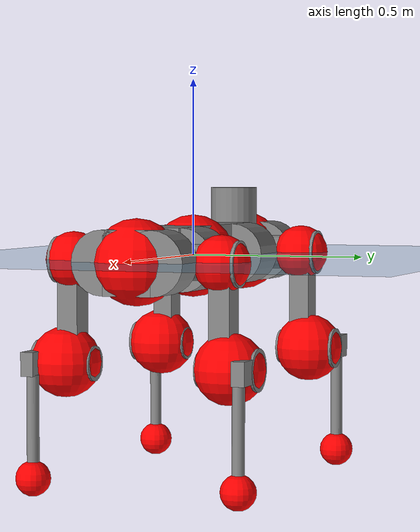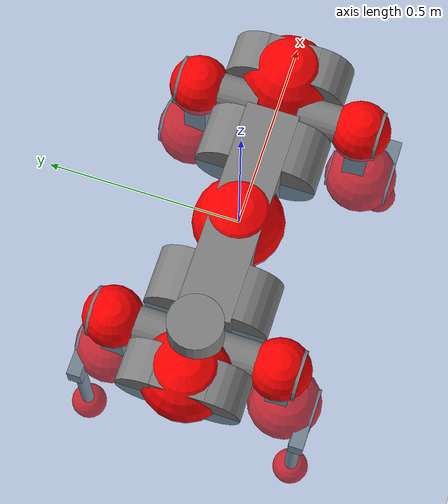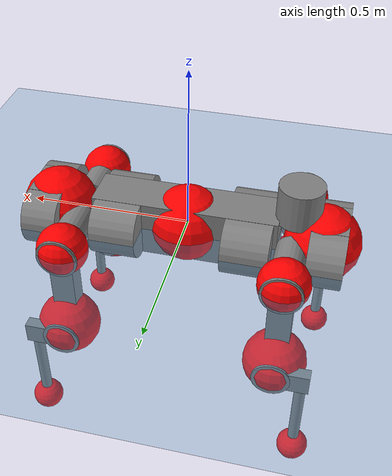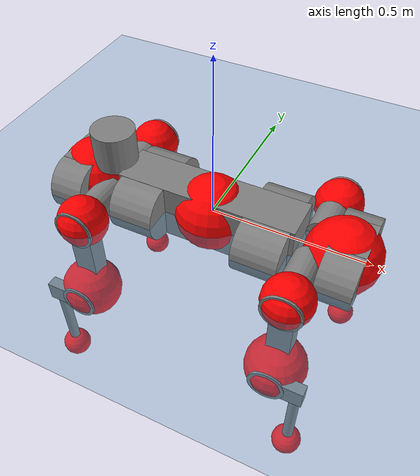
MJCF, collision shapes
<mujoco model="anymal_c">
  <compiler angle="radian" assetdir="assets" balanceinertia="true" inertiafromgeom="false"/>

  <option timestep="0.005" density="1.2" viscosity="2e-05"/>

  <size nkey="1"/>

  <visual>
    <quality shadowsize="8192"/>
    <map shadowclip="0.5"/>
  </visual>

  <default>
    <default class="/">
      <material specular="0" shininess="0.25"/>
      <geom contype="0" conaffinity="0" group="1" solref="-1000 -80"/>
      <site size="0.01 0.005 0.005" group="5"/>
      <general forcelimited="true" forcerange="-80 80" biastype="affine" gainprm="80" biasprm="0 -80 -2"/>
      <default class="anymal_c">
        <joint armature="0.01" damping="0.01" frictionloss="0.1"/>
        <default class="visual">
          <geom type="mesh" group="2"/>
          <default class="visual_zflip"/>
        </default>
        <default class="collision">
          <geom type="cylinder" group="3"/>
          <default class="foot">
            <geom size="0.03 0 0" type="sphere" condim="6" priority="1" friction="0.8 0.02 0.01" solimp="0.015 1 0.03"/>
          </default>
        </default>
      </default>
      <default class="reward_collision_sphere">
        <geom group="5" rgba="1 0 0 1"/>
      </default>
    </default>
  </default>

  <asset>
    <texture type="skybox" colorspace="auto" name="//unnamed_texture_0" builtin="gradient" rgb1="0.95 0.95 0.95" rgb2="0.95 0.95 0.95" width="100" height="600"/>
    <texture type="2d" colorspace="auto" name="texplane" builtin="checker" rgb1="0.345 0.575 0.748" rgb2="0.345 0.575 0.748" markrgb="1 1 1" width="512" height="512"/>
    <texture type="2d" colorspace="linear" name="base" file="base.png"/>
    <texture type="2d" colorspace="linear" name="top_shell" file="top_shell.png"/>
    <texture type="2d" colorspace="linear" name="bottom_shell" file="bottom_shell.png"/>
    <texture type="2d" colorspace="linear" name="remote" file="remote.png"/>
    <texture type="2d" colorspace="linear" name="hatch" file="hatch.png"/>
    <texture type="2d" colorspace="linear" name="handle" file="handle.png"/>
    <texture type="2d" colorspace="linear" name="face" file="face.png"/>
    <texture type="2d" colorspace="linear" name="battery" file="battery.png"/>
    <texture type="2d" colorspace="linear" name="lidar_cage" file="lidar_cage.png"/>
    <texture type="2d" colorspace="linear" name="depth_camera" file="depth_camera.png"/>
    <texture type="2d" colorspace="linear" name="wide_angle_camera" file="wide_angle_camera.png"/>
    <texture type="2d" colorspace="linear" name="lidar" file="lidar.png"/>
    <texture type="2d" colorspace="linear" name="drive" file="drive.png"/>
    <texture type="2d" colorspace="linear" name="hip_l" file="hip_l.png"/>
    <texture type="2d" colorspace="linear" name="shank_l" file="shank_l.png"/>
    <texture type="2d" colorspace="linear" name="foot" file="foot.png"/>
    <texture type="2d" colorspace="linear" name="thigh" file="thigh.png"/>
    <texture type="2d" colorspace="linear" name="shank_r" file="shank_r.png"/>
    <texture type="2d" colorspace="linear" name="hip_r" file="hip_r.png"/>
    <material name="MatPlane" class="/" texture="texplane" texuniform="true" texrepeat="2 2" specular="0.9" shininess="0.5"/>
    <material name="black_plastic" class="/" rgba="0.007 0.007 0.007 1"/>
    <material name="green" class="/" rgba="0.052 0.178 0.033 1"/>
    <material name="red" class="/" rgba="0.178 0.006 0.005 1"/>
    <material name="yellow" class="/" rgba="0.178 0.119 0.006 1"/>
    <material name="lwl" class="/" rgba="0.8 0.8 0.8 1"/>
    <material name="base" class="/" texture="base"/>
    <material name="top_shell" class="/" texture="top_shell"/>
    <material name="bottom_shell" class="/" texture="bottom_shell"/>
    <material name="hip_l" class="/" texture="hip_l"/>
    <material name="thigh" class="/" texture="thigh"/>
    <material name="shank_l" class="/" texture="shank_l"/>
    <material name="foot" class="/" texture="foot"/>
    <material name="hip_r" class="/" texture="hip_r"/>
    <material name="shank" class="/" texture="shank_r"/>
    <material name="hatch" class="/" texture="hatch"/>
    <material name="remote" class="/" texture="remote"/>
    <material name="handle" class="/" texture="handle"/>
    <material name="face" class="/" texture="face"/>
    <material name="depth_camera" class="/" texture="depth_camera"/>
    <material name="wide_angle_camera" class="/" texture="wide_angle_camera"/>
    <material name="battery" class="/" texture="battery"/>
    <material name="lidar_cage" class="/" texture="lidar_cage"/>
    <material name="lidar" class="/" texture="lidar"/>
    <material name="drive" class="/" texture="drive"/>
    <mesh name="base_0" class="/" file="base_0.obj"/>
    <mesh name="base_1" class="/" file="base_1.obj"/>
    <mesh name="base_2" class="/" file="base_2.obj"/>
    <mesh name="base_3" class="/" file="base_3.obj"/>
    <mesh name="base_4" class="/" file="base_4.obj"/>
    <mesh name="base_5" class="/" file="base_5.obj"/>
    <mesh name="top_shell" class="/" file="top_shell.obj"/>
    <mesh name="bottom_shell" class="/" file="bottom_shell.obj"/>
    <mesh name="remote" class="/" file="remote.obj"/>
    <mesh name="handle" class="/" file="handle.obj"/>
    <mesh name="face" class="/" file="face.obj"/>
    <mesh name="wide_angle_camera" class="/" file="wide_angle_camera.obj"/>
    <mesh name="depth_camera" class="/" file="depth_camera.obj"/>
    <mesh name="battery" class="/" file="battery.obj"/>
    <mesh name="lidar_cage" class="/" file="lidar_cage.obj"/>
    <mesh name="lidar" class="/" file="lidar.obj"/>
    <mesh name="drive" class="/" file="drive.obj"/>
    <mesh name="hip_l" class="/" file="hip_l.obj"/>
    <mesh name="thigh" class="/" file="thigh.obj"/>
    <mesh name="shank_l" class="/" file="shank_l.obj"/>
    <mesh name="foot" class="/" file="foot.obj"/>
    <mesh name="hip_r" class="/" file="hip_r.obj"/>
    <mesh name="hatch" class="/" file="hatch.obj"/>
    <mesh name="shank_r" class="/" file="shank_r.obj"/>
  </asset>

  <worldbody>
    <geom name="floor" class="/" size="100 100 0.125" type="plane" group="0" material="MatPlane"/>
    <light name="toplight_shadow" class="/" pos="0 0 5" dir="0.0990148 0.0990148 -0.990148" type="directional" ambient="0.04 0.04 0.04" diffuse="0.55 0.55 0.55" specular="0.12 0.12 0.12"/>
    <light name="toplight_fill" class="/" pos="0 0 5" dir="0.0990148 0.0990148 -0.990148" type="directional" castshadow="false" ambient="0.04 0.04 0.04" diffuse="0.3 0.3 0.3" specular="0.08 0.08 0.08"/>
    <body name="trunk" childclass="anymal_c" pos="-0.000119638 1.02386e-05 -0.00264251" quat="1 -0.000225826 0.000291407 -0.000100596">
      <inertial pos="0.00112695 0.00101834 0.0516037" quat="0.499551 0.500481 0.499959 0.500008" mass="17.3342" diaginertia="0.415152 0.66458 0.207875"/>
      <joint name="//unnamed_joint_0" type="free" armature="0" damping="0" frictionloss="0"/>
      <geom name="//unnamed_geom_1" class="visual" material="green" mesh="base_0"/>
      <geom name="//unnamed_geom_2" class="visual" material="yellow" mesh="base_1"/>
      <geom name="//unnamed_geom_3" class="visual" material="red" mesh="base_2"/>
      <geom name="//unnamed_geom_4" class="visual" material="black_plastic" mesh="base_3"/>
      <geom name="//unnamed_geom_5" class="visual" material="lwl" mesh="base_4"/>
      <geom name="//unnamed_geom_6" class="visual" material="base" mesh="base_5"/>
      <geom name="trunk_1" class="collision" size="0.284081 0.0685712 0.0881629" type="box"/>
      <geom name="trunk_2" class="collision" size="0.0881629 0.0710201" pos="0.200057 0.071595 0" quat="0.707107 0 0.707107 0"/>
      <geom name="trunk_3" class="collision" size="0.0881629 0.0710201" pos="-0.200057 0.071595 0" quat="0.707107 0 0.707107 0"/>
      <geom name="trunk_4" class="collision" size="0.0881629 0.0710201" pos="0.200057 -0.071595 0" quat="0.707107 0 0.707107 0"/>
      <geom name="trunk_5" class="collision" size="0.0881629 0.0710201" pos="-0.200057 -0.071595 0" quat="0.707107 0 0.707107 0"/>
      <geom name="//unnamed_geom_12" class="visual" material="top_shell" mesh="top_shell"/>
      <geom name="//unnamed_geom_13" class="visual" material="bottom_shell" mesh="bottom_shell"/>
      <geom name="//unnamed_geom_14" class="visual" material="remote" mesh="remote"/>
      <geom name="//unnamed_geom_15" class="visual" material="handle" mesh="handle"/>
      <geom name="//unnamed_geom_16" class="visual" pos="0.381258 0 0" quat="1 0 0 0" material="face" mesh="face"/>
      <geom name="trunk_6" class="collision" size="0.0538773 0.0685712 0.0881629" pos="0.431848 0 0" type="box"/>
      <geom name="//unnamed_geom_18" class="collision" size="0.0881629 0.0538773" pos="0.431848 0.071595 0" quat="0.707107 0 0.707107 0"/>
      <geom name="//unnamed_geom_19" class="collision" size="0.0881629 0.0538773" pos="0.431848 -0.071595 0" quat="0.707107 0 0.707107 0"/>
      <geom name="//unnamed_geom_20" class="visual" pos="0.42463 0 -0.0296687" quat="0.965926 0 0.258819 0" material="depth_camera" mesh="depth_camera"/>
      <geom name="//unnamed_geom_21" class="visual" pos="0.471859 0 0.0149127" material="wide_angle_camera" mesh="wide_angle_camera"/>
      <geom name="//unnamed_geom_22" class="visual_zflip" pos="-0.381258 0 0" quat="0 0 0 1" material="face" mesh="face"/>
      <geom name="trunk_7" class="collision" size="0.0538773 0.0685712 0.0881629" pos="-0.431848 0 0" quat="0 0 0 1" type="box"/>
      <geom name="//unnamed_geom_24" class="collision" size="0.0881629 0.0538773" pos="-0.431848 -0.071595 0" quat="0 -0.707107 0 0.707107"/>
      <geom name="//unnamed_geom_25" class="collision" size="0.0881629 0.0538773" pos="-0.431848 0.071595 0" quat="0 -0.707107 0 0.707107"/>
      <geom name="//unnamed_geom_26" class="visual" pos="-0.42463 0 -0.0296687" quat="0 -0.258819 0 0.965926" material="depth_camera" mesh="depth_camera"/>
      <geom name="//unnamed_geom_27" class="visual_zflip" pos="-0.471859 0 0.0149127" quat="0 0 0 1" material="wide_angle_camera" mesh="wide_angle_camera"/>
      <geom name="//unnamed_geom_28" class="visual" material="battery" mesh="battery"/>
      <geom name="//unnamed_geom_29" class="visual" pos="0 0.0795567 0.0283585" quat="0.683013 -0.183013 0.183013 0.683013" material="depth_camera" mesh="depth_camera"/>
      <geom name="//unnamed_geom_30" class="visual" pos="0 -0.0795567 0.0283585" quat="0.683013 0.183013 0.183013 -0.683013" material="depth_camera" mesh="depth_camera"/>
      <geom name="//unnamed_geom_31" class="visual" pos="-0.334808 0 0.0732189" quat="1 0 0 0" material="lidar_cage" mesh="lidar_cage"/>
      <geom name="trunk_8" class="collision" size="0.0685712 0.0587753" pos="-0.334808 0 0.132989"/>
      <geom name="//unnamed_geom_33" class="visual" pos="-0.334808 4.04589e-05 0.141656" quat="0.707107 0 0 -0.707107" material="lidar" mesh="lidar"/>
      <geom name="//unnamed_geom_34" class="visual" pos="0.275849 0.10636 4.59024e-10" quat="0.258819 0.965926 0 0" material="drive" mesh="drive"/>
      <geom name="//unnamed_geom_35" class="visual" pos="0.275849 -0.10636 -4.59024e-10" quat="0.258819 -0.965926 0 0" material="drive" mesh="drive"/>
      <geom name="//unnamed_geom_36" class="visual" pos="-0.275849 0.10636 -4.59024e-10" quat="0 0 0.965926 -0.258819" material="drive" mesh="drive"/>
      <geom name="//unnamed_geom_37" class="visual" pos="-0.275849 -0.10636 4.59024e-10" quat="0 0 -0.965926 -0.258819" material="drive" mesh="drive"/>
      <geom name="//unnamed_geom_38" class="visual" pos="0.106697 0 0.0727208" quat="1 0 0 0" material="hatch" mesh="hatch"/>
      <geom name="//unnamed_geom_39" class="reward_collision_sphere" size="0.117551"/>
      <geom name="//unnamed_geom_40" class="reward_collision_sphere" size="0.117551" pos="0.413911 0 0"/>
      <geom name="//unnamed_geom_41" class="reward_collision_sphere" size="0.117551" pos="-0.413911 0 0"/>
      <site name="imu" pos="0.238757 -0.0055052 0.0570182" size="0.00979588"/>
      <camera name="track" pos="0 -2.04557 0" quat="0.707107 0.707107 0 0" mode="trackcom"/>
      <camera name="ego_camera" pos="0.413911 0 -0.039847" quat="-0.5 -0.5 0.5 0.5"/>
      <body name="LF_HIP" pos="0.276713 0.104225 -0.00113241" quat="0.259397 0.965771 0.000327758 -0.000115981">
        <inertial pos="0.0503052 -0.0147959 -0.0108987" quat="-0.127084 0.709213 -0.136272 0.679924" mass="2.52564" diaginertia="0.00379166 0.00521233 0.00327877"/>
        <joint name="LF_HAA" pos="0 0 0" axis="0.999999 -0.00152737 -0.000729217" range="-0.768487 0.491348" armature="0.011264" damping="0.0238945" frictionloss="0.0878449"/>
        <geom name="//unnamed_geom_42" class="visual" pos="0 2.70023e-05 -4.43511e-06" quat="0.258819 -0.965926 0 0" material="hip_l" mesh="hip_l"/>
        <geom name="//unnamed_geom_43" class="visual" pos="0.0550962 -0.0681073 -0.0391249" quat="0.183013 -0.683013 0.683013 0.183013" material="drive" mesh="drive"/>
        <geom name="//unnamed_geom_44" class="collision" size="0.0489794 0.0685712" pos="0.0550962 -0.0122323 -0.00687859" quat="-0.353553 -0.612372 0.612372 -0.353553"/>
        <body name="LF_THIGH" pos="0.0556693 -0.0751123 -0.0396812" quat="0.182977 -0.682986 0.682992 0.183227">
          <inertial pos="0.0291256 -0.00029967 -0.24748" quat="0.992812 -0.00191519 -0.08192 0.0872386" mass="2.86389" diaginertia="0.0197885 0.0337432 0.00399521"/>
          <joint name="LF_HFE" pos="0 0 0" axis="0.999935 0.00398496 0.0106786" range="-3.19817 3.1885" armature="0.0103514" damping="0.0102964" frictionloss="0.093877"/>
          <geom name="//unnamed_geom_45" class="visual" pos="-0.00204894 -3.22865e-06 0" quat="0.707107 0 0 -0.707107" material="thigh" mesh="thigh"/>
          <geom name="//unnamed_geom_46" class="collision" size="0.0636732 0.0391835" pos="0.0367921 0 0" quat="0.5 0.5 -0.5 -0.5"/>
          <geom name="//unnamed_geom_47" class="collision" size="0.0367345 0.0293876 0.138429" pos="0.0275941 0 -0.140774" quat="0.707107 0 0 -0.707107" type="box"/>
          <geom name="//unnamed_geom_48" class="visual" pos="0.0922563 0 -0.28391" quat="1 0 0 0" material="drive" mesh="drive"/>
          <geom name="//unnamed_geom_49" class="collision" size="0.0489794 0.0685712" pos="0.02787 0 -0.28391" quat="0.707107 0 0.707107 0"/>
          <geom name="//unnamed_geom_50" class="reward_collision_sphere" size="0.078367" pos="0.0229951 0 0"/>
          <body name="LF_SHANK" pos="0.0903881 0.00248004 -0.281546" quat="1 0.000230119 3.62447e-05 -0.000605045">
            <inertial pos="0.00600511 -0.0624724 -0.0808235" quat="0.992996 -0.115266 -0.000936533 -0.0259108" mass="0.521474" diaginertia="0.00667803 0.0103438 0.00104981"/>
            <joint name="LF_KFE" pos="0 0 0" axis="0.999996 0.00263646 -0.000494213" range="-3.15121 3.13723" armature="0.00867668" damping="0.0196899" frictionloss="0.0850341"/>
            <geom name="//unnamed_geom_51" class="visual" pos="-0.000668114 -0.00356242 0" quat="0.707107 0 0 -0.707107" material="shank_l" mesh="shank_l"/>
            <geom name="LF_kfe_act" class="collision" size="0.0587753 0.0195918" pos="0.0183961 0 0" quat="0.5 0.5 -0.5 -0.5"/>
            <geom name="//unnamed_geom_53" class="collision" size="0.0563253 0.0330611 0.0186122" pos="0.0183961 -0.0588091 0" quat="0.5 0.5 -0.5 -0.5" type="box"/>
            <geom name="//unnamed_geom_54" class="visual" pos="0.0120036 -0.091102 -0.336677" quat="0.382683 0 0 -0.92388" material="foot" mesh="foot"/>
            <geom name="LF_calf" class="collision" size="0.0171428 0.138369" pos="0.0120034 -0.089954 -0.168339" quat="0.707107 0 0 -0.707107"/>
            <geom name="LF_foot" class="foot" size="0.0311955" pos="0.0120034 -0.089954 -0.314263" quat="0.707107 0 0 -0.707107"/>
            <geom name="//unnamed_geom_57" class="reward_collision_sphere" size="0.0979588" pos="-0.0459902 0 0"/>
            <geom name="//unnamed_geom_58" class="reward_collision_sphere" size="0.0489794" pos="0.0120034 -0.089954 -0.314263"/>
            <site name="LF_foot" class="foot" pos="0.0120034 -0.089954 -0.314263" quat="0.707107 0 0 -0.707107" size="0.00979588"/>
          </body>
        </body>
      </body>
      <body name="RF_HIP" pos="0.278463 -0.109457 0.000218197" quat="0.25801 -0.966142 0.000647257 -0.00040231">
        <inertial pos="0.0518033 0.0159907 -0.00840672" quat="0.134806 0.680414 0.127265 0.70899" mass="2.61396" diaginertia="0.00383001 0.00521575 0.00322419"/>
        <joint name="RF_HAA" pos="0 0 0" axis="0.999999 0.00118771 0.00067849" range="-0.444647 0.694307" armature="0.0099724" damping="0.0169527" frictionloss="0.0842485"/>
        <geom name="//unnamed_geom_59" class="visual" pos="0 -2.70021e-05 -4.43509e-06" quat="0.258819 0.965926 0 0" material="hip_r" mesh="hip_r"/>
        <geom name="//unnamed_geom_60" class="visual" pos="0.0550962 0.0681073 -0.0391249" quat="0.183013 0.683013 0.683013 -0.183013" material="drive" mesh="drive"/>
        <geom name="//unnamed_geom_61" class="collision" size="0.0489794 0.0685712" pos="0.0550962 0.0122323 -0.00687859" quat="-0.353553 0.612372 0.612372 0.353553"/>
        <body name="RF_THIGH" pos="0.0556268 0.0770073 -0.0433184" quat="0.18215 0.683693 0.682697 -0.18251">
          <inertial pos="0.0277418 0.00031543 -0.244651" quat="0.992927 -0.00346509 -0.078976 0.0885774" mass="2.79703" diaginertia="0.0196578 0.032513 0.00413549"/>
          <joint name="RF_HFE" pos="0 0 0" axis="0.999991 0.000414729 -0.00410826" stiffness="0.00642776" range="-3.13906 3.11303" armature="0.00956878" damping="0.000493937" frictionloss="0.0938953"/>
          <geom name="//unnamed_geom_62" class="visual" pos="-0.00204894 -3.22865e-06 0" quat="0.707107 0 0 -0.707107" material="thigh" mesh="thigh"/>
          <geom name="//unnamed_geom_63" class="collision" size="0.0636732 0.0391835" pos="0.0367921 0 0" quat="0.5 0.5 0.5 0.5"/>
          <geom name="//unnamed_geom_64" class="collision" size="0.0367345 0.0293876 0.138429" pos="0.0275941 0 -0.140774" quat="0.707107 0 0 0.707107" type="box"/>
          <geom name="//unnamed_geom_65" class="visual" pos="0.0922563 0 -0.28391" quat="1 0 0 0" material="drive" mesh="drive"/>
          <geom name="//unnamed_geom_66" class="collision" size="0.0489794 0.0685712" pos="0.02787 0 -0.28391" quat="0.707107 0 0.707107 0"/>
          <geom name="//unnamed_geom_67" class="reward_collision_sphere" size="0.078367" pos="0.0229951 0 0"/>
          <body name="RF_SHANK" pos="0.0935155 0.00107409 -0.281307" quat="1 2.81159e-06 -4.80043e-06 4.46907e-05">
            <inertial pos="0.00307512 0.0618798 -0.0797294" quat="0.993491 0.111809 -0.00547757 0.0210886" mass="0.557548" diaginertia="0.00697175 0.0104881 0.00111319"/>
            <joint name="RF_KFE" pos="0 0 0" axis="1 0.000234092 0.00076824" range="-3.10334 3.09643" armature="0.00975878" damping="0.00762065" frictionloss="0.097437"/>
            <geom name="//unnamed_geom_68" class="visual" pos="-0.00066811 0.00356241 0" quat="0.707107 0 0 0.707107" material="shank" mesh="shank_r"/>
            <geom name="RF_kfe_act" class="collision" size="0.0587753 0.0195918" pos="0.0183961 0 0" quat="0.5 0.5 0.5 0.5"/>
            <geom name="//unnamed_geom_70" class="collision" size="0.0563253 0.0330611 0.0186122" pos="0.0183961 0.0588091 0" quat="0.5 0.5 0.5 0.5" type="box"/>
            <geom name="//unnamed_geom_71" class="visual" pos="0.0120033 0.091102 -0.336677" quat="0.382683 0 0 0.92388" material="foot" mesh="foot"/>
            <geom name="RF_calf" class="collision" size="0.0171428 0.138369" pos="0.0120034 0.089954 -0.168339" quat="0.707107 0 0 0.707107"/>
            <geom name="RF_foot" class="foot" size="0.0284452" pos="0.0120034 0.089954 -0.314263" quat="0.707107 0 0 0.707107"/>
            <geom name="//unnamed_geom_74" class="reward_collision_sphere" size="0.0979588" pos="-0.0459902 0 0"/>
            <geom name="//unnamed_geom_75" class="reward_collision_sphere" size="0.0489794" pos="0.0120034 0.089954 -0.314263"/>
            <site name="RF_foot" class="foot" pos="0.0120034 0.089954 -0.314263" quat="0.707107 0 0 0.707107" size="0.00979588"/>
          </body>
        </body>
      </body>
      <body name="LH_HIP" pos="-0.275572 0.108784 -0.000135219" quat="-0.000123209 -0.000343781 0.965945 -0.258749">
        <inertial pos="0.0495536 0.01355 -0.00836949" quat="0.136806 0.67889 0.127971 0.709941" mass="2.6123" diaginertia="0.00394316 0.00568751 0.00311928"/>
        <joint name="LH_HAA" pos="0 0 0" axis="0.999926 0.0035843 -0.0116492" range="-0.479747 0.669822" armature="0.00985182" damping="0" frictionloss="0.111545"/>
        <geom name="//unnamed_geom_76" class="visual" pos="0 -2.70021e-05 -4.43509e-06" quat="-0.258819 -0.965926 0 0" material="hip_r" mesh="hip_r"/>
        <geom name="//unnamed_geom_77" class="visual" pos="0.0550962 0.0681073 -0.0391249" quat="0.183013 0.683013 0.683013 -0.183013" material="drive" mesh="drive"/>
        <geom name="//unnamed_geom_78" class="collision" size="0.0489794 0.0685712" pos="0.0550962 0.0122323 -0.00687859" quat="-0.353553 0.612372 0.612372 0.353553"/>
        <body name="LH_THIGH" pos="0.0540765 0.0720256 -0.0427714" quat="0.181584 0.682751 0.683571 -0.183327">
          <inertial pos="0.0265209 -0.0027316 -0.244739" quat="0.991705 -0.00664492 -0.0918398 0.0896781" mass="2.8487" diaginertia="0.0201806 0.0327661 0.00430756"/>
          <joint name="LH_HFE" pos="0 0 0" axis="1 0.000467408 0.000646105" stiffness="0.00949153" range="-3.13897 3.14964" armature="0.00959883" damping="0.0071109" frictionloss="0.0968652"/>
          <geom name="//unnamed_geom_79" class="visual" pos="-0.00204894 -3.22865e-06 0" quat="0.707107 0 0 -0.707107" material="thigh" mesh="thigh"/>
          <geom name="//unnamed_geom_80" class="collision" size="0.0636732 0.0391835" pos="0.0367921 0 0" quat="0.5 0.5 -0.5 -0.5"/>
          <geom name="//unnamed_geom_81" class="collision" size="0.0367345 0.0293876 0.138429" pos="0.0275941 0 -0.140774" quat="0.707107 0 0 -0.707107" type="box"/>
          <geom name="//unnamed_geom_82" class="visual" pos="0.0922563 0 -0.28391" quat="1 0 0 0" material="drive" mesh="drive"/>
          <geom name="//unnamed_geom_83" class="collision" size="0.0489794 0.0685712" pos="0.02787 0 -0.28391" quat="0.707107 0 0.707107 0"/>
          <geom name="//unnamed_geom_84" class="reward_collision_sphere" size="0.078367" pos="0.0229951 0 0"/>
          <body name="LH_SHANK" pos="0.0944468 -0.000701996 -0.284623" quat="0.999999 0.000585336 -0.000597699 -0.000553719">
            <inertial pos="0.00742704 0.0605641 -0.0830607" quat="0.992898 0.116085 -0.00149196 0.0260016" mass="0.539349" diaginertia="0.00652273 0.0104807 0.0010899"/>
            <joint name="LH_KFE" pos="0 0 0" axis="0.999961 0.00243192 0.00844331" stiffness="8.75235e-05" range="-3.1475 3.14723" armature="0.00944882" damping="0.0199385" frictionloss="0.111153"/>
            <geom name="//unnamed_geom_85" class="visual" pos="-0.00066811 0.00356241 0" quat="-0.707107 0 0 -0.707107" material="shank" mesh="shank_r"/>
            <geom name="LH_kfe_act" class="collision" size="0.0587753 0.0195918" pos="0.0183961 0 0" quat="0.5 0.5 -0.5 -0.5"/>
            <geom name="//unnamed_geom_87" class="collision" size="0.0563253 0.0330611 0.0186122" pos="0.0183961 0.0588091 0" quat="0.5 0.5 -0.5 -0.5" type="box"/>
            <geom name="//unnamed_geom_88" class="visual" pos="0.0120033 0.091102 -0.336677" quat="-0.382683 0 0 -0.92388" material="foot" mesh="foot"/>
            <geom name="LH_calf" class="collision" size="0.0171428 0.138369" pos="0.0120034 0.089954 -0.168339" quat="0.707107 0 0 -0.707107"/>
            <geom name="LH_foot" class="foot" size="0.0291572" pos="0.0120034 0.089954 -0.314263" quat="0.707107 0 0 -0.707107"/>
            <geom name="//unnamed_geom_91" class="reward_collision_sphere" size="0.0979588" pos="-0.0459902 0 0"/>
            <geom name="//unnamed_geom_92" class="reward_collision_sphere" size="0.0489794" pos="0.0120034 0.089954 -0.314263"/>
            <site name="LH_foot" class="foot" pos="0.0120034 0.089954 -0.314263" quat="0.707107 0 0 -0.707107" size="0.00979588"/>
          </body>
        </body>
      </body>
      <body name="RH_HIP" pos="-0.275989 -0.104001 -0.00014018" quat="0.000545325 -0.000741068 -0.96606 -0.258317">
        <inertial pos="0.0527898 -0.0130412 -0.0110659" quat="-0.128736 0.709787 -0.135198 0.679229" mass="2.48232" diaginertia="0.00385324 0.00513341 0.00312292"/>
        <joint name="RH_HAA" pos="0 0 0" axis="0.999927 -0.000106985 0.012051" range="-0.760337 0.515652" armature="0.00886309" damping="0.00648331" frictionloss="0.111756"/>
        <geom name="//unnamed_geom_93" class="visual" pos="0 2.70023e-05 -4.43511e-06" quat="-0.258819 0.965926 0 0" material="hip_l" mesh="hip_l"/>
        <geom name="//unnamed_geom_94" class="visual" pos="0.0550962 -0.0681073 -0.0391249" quat="-0.183013 0.683013 -0.683013 -0.183013" material="drive" mesh="drive"/>
        <geom name="//unnamed_geom_95" class="collision" size="0.0489794 0.0685712" pos="0.0550962 -0.0122323 -0.00687859" quat="0.353553 0.612372 -0.612372 0.353553"/>
        <body name="RH_THIGH" pos="0.0553071 -0.0746183 -0.0421792" quat="-0.183065 0.683073 -0.682942 -0.182998">
          <inertial pos="0.0287139 -2.73792e-05 -0.241754" quat="0.993702 -0.0100313 -0.083544 0.0740066" mass="2.87004" diaginertia="0.0201702 0.0336826 0.00415105"/>
          <joint name="RH_HFE" pos="0 0 0" axis="0.999909 0.00345289 -0.0130701" stiffness="0.00908985" range="-3.09188 3.11581" armature="0.00985858" damping="0.00969079" frictionloss="0.106317"/>
          <geom name="//unnamed_geom_96" class="visual" pos="-0.00204894 -3.22865e-06 0" quat="0.707107 0 0 -0.707107" material="thigh" mesh="thigh"/>
          <geom name="//unnamed_geom_97" class="collision" size="0.0636732 0.0391835" pos="0.0367921 0 0" quat="0.5 0.5 0.5 0.5"/>
          <geom name="//unnamed_geom_98" class="collision" size="0.0367345 0.0293876 0.138429" pos="0.0275941 0 -0.140774" quat="0.707107 0 0 0.707107" type="box"/>
          <geom name="//unnamed_geom_99" class="visual" pos="0.0922563 0 -0.28391" quat="1 0 0 0" material="drive" mesh="drive"/>
          <geom name="//unnamed_geom_100" class="collision" size="0.0489794 0.0685712" pos="0.02787 0 -0.28391" quat="0.707107 0 0.707107 0"/>
          <geom name="//unnamed_geom_101" class="reward_collision_sphere" size="0.078367" pos="0.0229951 0 0"/>
          <body name="RH_SHANK" pos="0.0915148 -0.00221755 -0.281851" quat="0.999999 8.10814e-05 0.00111925 -0.000700555">
            <inertial pos="0.0078518 -0.0626208 -0.0808601" quat="0.992599 -0.119105 -0.0022255 -0.0235693" mass="0.524431" diaginertia="0.00648506 0.00978248 0.00105952"/>
            <joint name="RH_KFE" pos="0 0 0" axis="0.999987 -0.00329696 0.00400749" stiffness="0.00158005" range="-3.08859 3.17015" armature="0.0102246" damping="0.00845288" frictionloss="0.0966619"/>
            <geom name="//unnamed_geom_102" class="visual" pos="-0.000668114 -0.00356242 0" quat="0.707107 0 0 -0.707107" material="shank_l" mesh="shank_l"/>
            <geom name="RH_kfe_act" class="collision" size="0.0587753 0.0195918" pos="0.0183961 0 0" quat="0.5 0.5 0.5 0.5"/>
            <geom name="//unnamed_geom_104" class="collision" size="0.0563253 0.0330611 0.0186122" pos="0.0183961 -0.0588091 0" quat="0.5 0.5 0.5 0.5" type="box"/>
            <geom name="//unnamed_geom_105" class="visual" pos="0.0120036 -0.091102 -0.336677" quat="0.382683 0 0 -0.92388" material="foot" mesh="foot"/>
            <geom name="RH_calf" class="collision" size="0.0171428 0.138369" pos="0.0120034 -0.089954 -0.168339" quat="0.707107 0 0 0.707107"/>
            <geom name="RH_foot" class="foot" size="0.0292694" pos="0.0120034 -0.089954 -0.314263" quat="0.707107 0 0 0.707107"/>
            <geom name="//unnamed_geom_108" class="reward_collision_sphere" size="0.0979588" pos="-0.0459902 0 0"/>
            <geom name="//unnamed_geom_109" class="reward_collision_sphere" size="0.0489794" pos="0.0120034 -0.089954 -0.314263"/>
            <site name="RH_foot" class="foot" pos="0.0120034 -0.089954 -0.314263" quat="0.707107 0 0 0.707107" size="0.00979588"/>
          </body>
        </body>
      </body>
    </body>
  </worldbody>

  <contact>
    <pair class="/" geom1="floor" geom2="LF_foot" name="//unnamed_contact_0"/>
    <pair class="/" geom1="floor" geom2="RF_foot" name="//unnamed_contact_1"/>
    <pair class="/" geom1="floor" geom2="LH_foot" name="//unnamed_contact_2"/>
    <pair class="/" geom1="floor" geom2="RH_foot" name="//unnamed_contact_3"/>
  </contact>

  <actuator>
    <general name="LF_HAA" class="/" joint="LF_HAA" forcerange="-70.8515 70.8515" gainprm="81.4503" biasprm="0 -81.4503 -2.09089"/>
    <general name="LF_HFE" class="/" joint="LF_HFE" forcerange="-77.8381 77.8381" gainprm="81.4503" biasprm="0 -81.4503 -2.09089"/>
    <general name="LF_KFE" class="/" joint="LF_KFE" forcerange="-81.6654 81.6654" gainprm="81.4503" biasprm="0 -81.4503 -2.09089"/>
    <general name="RF_HAA" class="/" joint="RF_HAA" forcerange="-75.2013 75.2013" gainprm="81.4503" biasprm="0 -81.4503 -2.09089"/>
    <general name="RF_HFE" class="/" joint="RF_HFE" forcerange="-86.9382 86.9382" gainprm="81.4503" biasprm="0 -81.4503 -2.09089"/>
    <general name="RF_KFE" class="/" joint="RF_KFE" forcerange="-70.9957 70.9957" gainprm="81.4503" biasprm="0 -81.4503 -2.09089"/>
    <general name="LH_HAA" class="/" joint="LH_HAA" forcerange="-86.848 86.848" gainprm="81.4503" biasprm="0 -81.4503 -2.09089"/>
    <general name="LH_HFE" class="/" joint="LH_HFE" forcerange="-79.1861 79.1861" gainprm="81.4503" biasprm="0 -81.4503 -2.09089"/>
    <general name="LH_KFE" class="/" joint="LH_KFE" forcerange="-71.1386 71.1386" gainprm="81.4503" biasprm="0 -81.4503 -2.09089"/>
    <general name="RH_HAA" class="/" joint="RH_HAA" forcerange="-77.4356 77.4356" gainprm="81.4503" biasprm="0 -81.4503 -2.09089"/>
    <general name="RH_HFE" class="/" joint="RH_HFE" forcerange="-78.8589 78.8589" gainprm="81.4503" biasprm="0 -81.4503 -2.09089"/>
    <general name="RH_KFE" class="/" joint="RH_KFE" forcerange="-76.8814 76.8814" gainprm="81.4503" biasprm="0 -81.4503 -2.09089"/>
  </actuator>

  <sensor>
    <gyro site="imu" name="imu_angular_velocity"/>
    <velocimeter site="imu" name="imu_linear_velocity"/>
    <framelinvel objtype="site" objname="LF_foot" name="LF_foot_global_linear_velocity"/>
    <framelinvel objtype="site" objname="RF_foot" name="RF_foot_global_linear_velocity"/>
    <framelinvel objtype="site" objname="LH_foot" name="LH_foot_global_linear_velocity"/>
    <framelinvel objtype="site" objname="RH_foot" name="RH_foot_global_linear_velocity"/>
  </sensor>

  <keyframe>
    <key name="home" qpos="0 0 0.55 1 0 0 0 0 0.4 -0.8 0 -0.4 0.8 0 -0.4 0.8 0 0.4 -0.8"/>
  </keyframe>
</mujoco>
